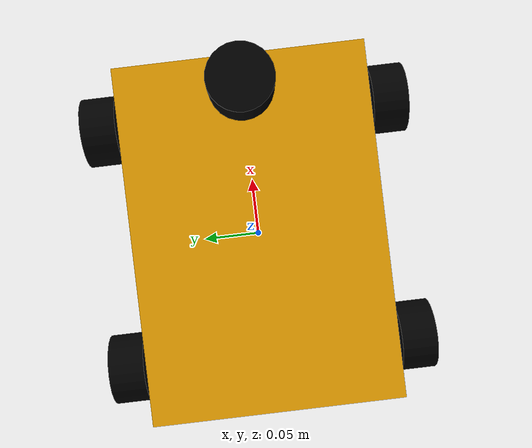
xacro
<?xml version="1.0"?>
<robot xmlns:xacro="http://www.ros.org/wiki/xacro" name="sentinel">
    <xacro:include filename="$(find sentinel_description)/urdf/base.xacro"/>
    <xacro:include filename="$(find sentinel_description)/urdf/macanum_wheel.xacro"/>
    <xacro:include filename="$(find sentinel_description)/urdf/sensors.xacro"/>

    <xacro:base/>
    <xacro:macanum_wheel prefix="top_right"/>
    <xacro:macanum_wheel prefix="top_left"/>
    <xacro:macanum_wheel prefix="lower_right"/>
    <xacro:macanum_wheel prefix="lower_left"/>
    <xacro:rplidar/>

    <link name="base_footprint">

    </link>

    <joint name="joint_name" type="fixed">
        <parent link="base_footprint"/>
        <child link="base_link"/>
        <origin xyz="0.0 0.0 0.04" rpy="0.0 0.0 0.0"/>
    </joint>

    <joint name="fr_motor_joint" type="continuous">
        <parent link="base_link"/>
        <child link="top_right_wheel"/>
        <axis xyz="0 0 1"/>
        <origin xyz="0.105 -0.125 -0.01" rpy="-1.57079632679  0 0"/>
    </joint>

    <joint name="fl_motor_joint" type="continuous">
        <parent link="base_link"/>
        <child link="top_left_wheel"/>
        <axis xyz="0 0 1"/>
        <origin xyz="0.105 0.125 -0.01" rpy="-1.57079632679  0 0"/>
    </joint>

    <joint name="lr_motor_joint" type="continuous">
        <parent link="base_link"/>
        <child link="lower_right_wheel"/>
        <axis xyz="0 0 1"/>
        <origin xyz="-0.105 -0.125 -0.01" rpy="-1.57079632679  0 0"/>
    </joint>

    <joint name="ll_motor_joint" type="continuous">
        <parent link="base_link"/>
        <child link="lower_left_wheel"/>
        <axis xyz="0 0 1"/>
        <origin xyz="-0.105 0.125 -0.01" rpy="-1.57079632679  0 0"/>
    </joint>

    <joint name="lidar_name" type="fixed">
        <parent link="base_link"/>
        <child link="laser"/>
        <origin xyz="0.1207 0.0 0.055" rpy="0.0 0.0 3.14159265359"/>
    </joint>
</robot>

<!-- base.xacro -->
<robot xmlns:xacro="http://www.ros.org/wiki/xacro">
    <xacro:macro name="base" params="">
        <link name="base_link">
            <visual>
                <geometry>
                    <box size="0.297 0.21 0.07"/>
                </geometry>
            </visual>
            <collision>
                <geometry>
                    <box size="0.297 0.21 0.07"/>
                </geometry>
            </collision>
            <inertial>
                <origin xyz="0.0 0.0 0.0" rpy="0.0 0.0 0.0"/>
                <mass value="1.0"/>
                <inertia ixx="0.0041" ixy="0.0" ixz="0.0" iyy="0.00776" iyz="0.0" izz="0.011"/>
            </inertial>
        </link>
    </xacro:macro>
</robot>

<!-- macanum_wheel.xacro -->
<robot xmlns:xacro="http://www.ros.org/wiki/xacro">
    <xacro:macro name="macanum_wheel" params="prefix">
        <link name="${prefix}_wheel">
            <visual>
                <geometry>
                    <cylinder radius="0.03" length="0.03"/>
                </geometry>
                <material name="black">
                    <color rgba="0 0 0 1"/>
                </material>
            </visual>
            <collision>
                <geometry>
                    <cylinder radius="0.03" length="0.03"/>
                </geometry>
            </collision>
            <inertial>
                <origin xyz="0.0 0.0 0.0" rpy="0.0 0.0 0.0"/>
                <mass value="0.1"/>
                <inertia ixx="0.00003" ixy="0.0" ixz="0.0" iyy="0.00003" iyz="0.0" izz="0.000045"/>
            </inertial>
        </link>
    </xacro:macro>
</robot>

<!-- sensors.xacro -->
<robot xmlns:xacro="http://www.ros.org/wiki/xacro">
    <xacro:macro name="rplidar" params="">
        <link name="laser">
            <visual>
                <geometry>
                    <cylinder radius="0.0275" length="0.04"/>
                </geometry>
                <material name="black">
                    <color rgba="0 0 0 1"/>
                </material>
            </visual>
            <collision>
                <geometry>
                    <cylinder radius="0.0275" length="0.04"/>
                </geometry>
            </collision>
            <inertial>
                <origin xyz="0.0 0.0 0.0" rpy="0.0 0.0 0.0"/>
                <mass value="0.1"/>
                <inertia ixx="0.00003" ixy="0.0" ixz="0.0" iyy="0.00003" iyz="0.0" izz="0.000045"/>
            </inertial>
        </link>
    </xacro:macro>
</robot>
